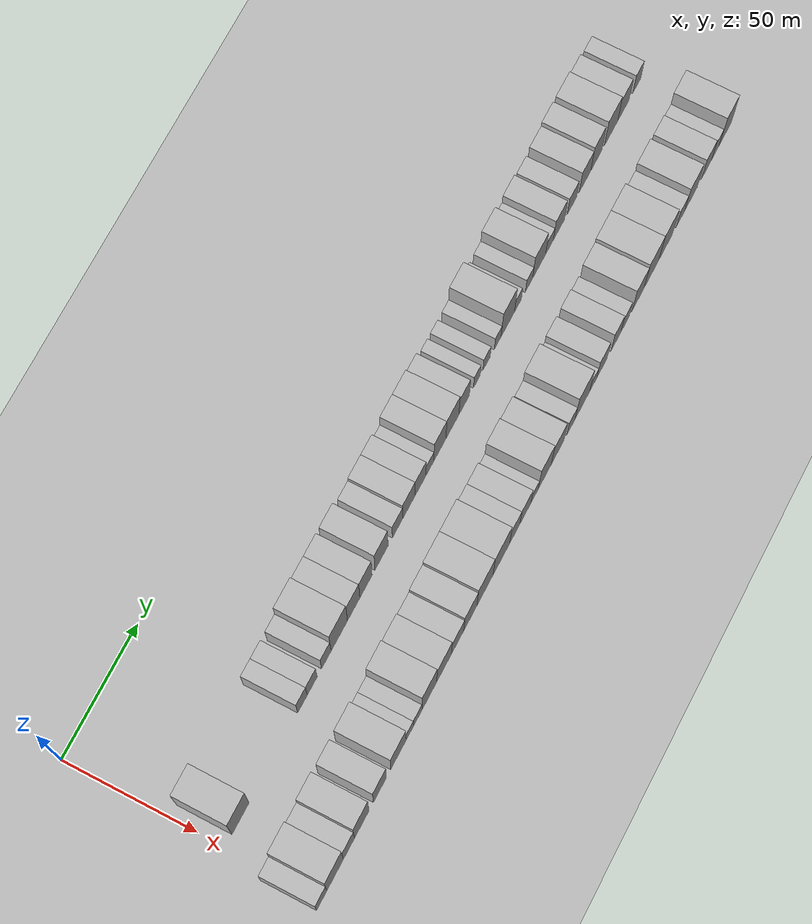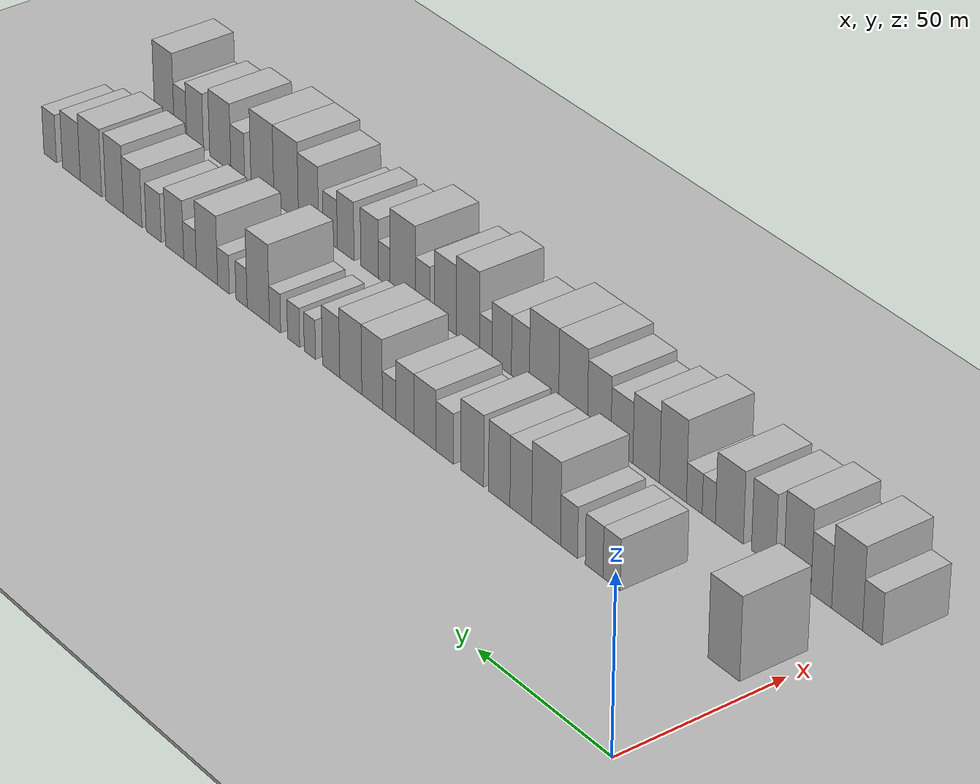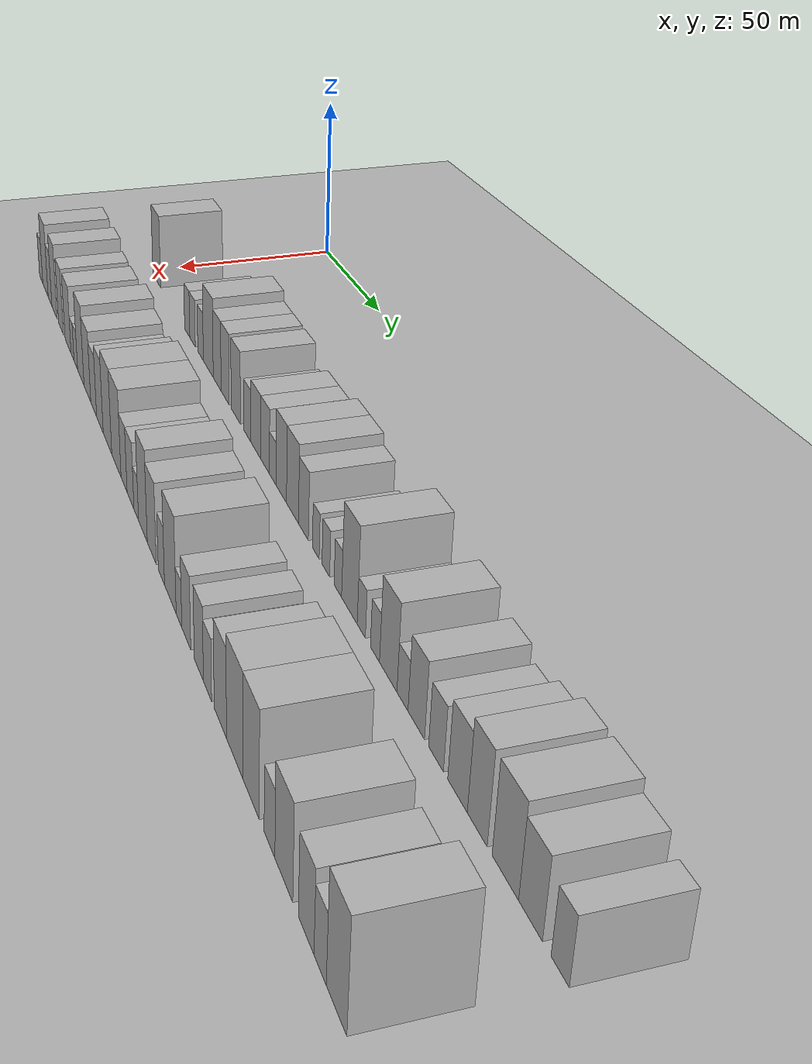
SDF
<sdf version="1.6">
 <world name="default">
  <include><name>ground_plane_1</name><uri>model://HANNAS_ground_plane</uri></include>
  <include>
   <name>ground_plane_2</name>
   <uri>model://HANNAS_ground_plane</uri>
   <pose>100 0 0  0 0 0</pose>
  </include>
  <model name="building_34">
   <static>1</static>
   <pose>50.0000 10.2601 0 0.000000 0.000000 0.000000</pose>
   <link name="link">
    <pose>0 0 12.00 0 0 0</pose>
    <collision name="collision"><geometry><box><size>20.0000 11.3468 24.0000</size></box></geometry></collision>
    <visual name="visual">
     <cast_shadows>0</cast_shadows>
     <geometry><box><size>20.0000 11.3468 24.0000</size></box></geometry>
     <material>
      <script>
       <uri>model://HANNAS_wall/materials/scripts</uri>
       <uri>model://HANNAS_wall/materials/textures</uri>
       <name>vrc/HANNAS_wall</name>
      </script>
     </material>
    </visual>
   </link>
  </model>
  <model name="building_35">
   <static>1</static>
   <pose>50.0000 51.6948 0 0.000000 0.000000 0.000000</pose>
   <link name="link">
    <pose>0 0 7.50 0 0 0</pose>
    <collision name="collision"><geometry><box><size>20.0000 6.5075 15.0000</size></box></geometry></collision>
    <visual name="visual">
     <cast_shadows>0</cast_shadows>
     <geometry><box><size>20.0000 6.5075 15.0000</size></box></geometry>
     <material>
      <script>
       <uri>model://HANNAS_wall/materials/scripts</uri>
       <uri>model://HANNAS_wall/materials/textures</uri>
       <name>vrc/HANNAS_wall</name>
      </script>
     </material>
    </visual>
   </link>
  </model>
  <model name="building_36">
   <static>1</static>
   <pose>50.0000 58.3173 0 0.000000 0.000000 0.000000</pose>
   <link name="link">
    <pose>0 0 7.50 0 0 0</pose>
    <collision name="collision"><geometry><box><size>20.0000 6.7374 15.0000</size></box></geometry></collision>
    <visual name="visual">
     <cast_shadows>0</cast_shadows>
     <geometry><box><size>20.0000 6.7374 15.0000</size></box></geometry>
     <material>
      <script>
       <uri>model://HANNAS_wall/materials/scripts</uri>
       <uri>model://HANNAS_wall/materials/textures</uri>
       <name>vrc/HANNAS_wall</name>
      </script>
     </material>
    </visual>
   </link>
  </model>
  <model name="building_37">
   <static>1</static>
   <pose>50.0000 67.9673 0 0.000000 0.000000 0.000000</pose>
   <link name="link">
    <pose>0 0 7.50 0 0 0</pose>
    <collision name="collision"><geometry><box><size>20.0000 6.5625 15.0000</size></box></geometry></collision>
    <visual name="visual">
     <cast_shadows>0</cast_shadows>
     <geometry><box><size>20.0000 6.5625 15.0000</size></box></geometry>
     <material>
      <script>
       <uri>model://HANNAS_wall/materials/scripts</uri>
       <uri>model://HANNAS_wall/materials/textures</uri>
       <name>vrc/HANNAS_wall</name>
      </script>
     </material>
    </visual>
   </link>
  </model>
  <model name="building_38">
   <static>1</static>
   <pose>50.0000 76.8623 0 0.000000 0.000000 0.000000</pose>
   <link name="link">
    <pose>0 0 12.00 0 0 0</pose>
    <collision name="collision"><geometry><box><size>20.0000 11.2276 24.0000</size></box></geometry></collision>
    <visual name="visual">
     <cast_shadows>0</cast_shadows>
     <geometry><box><size>20.0000 11.2276 24.0000</size></box></geometry>
     <material>
      <script>
       <uri>model://HANNAS_wall/materials/scripts</uri>
       <uri>model://HANNAS_wall/materials/textures</uri>
       <name>vrc/HANNAS_wall</name>
      </script>
     </material>
    </visual>
   </link>
  </model>
  <model name="building_39">
   <static>1</static>
   <pose>50.0000 86.7764 0 0.000000 0.000000 0.000000</pose>
   <link name="link">
    <pose>0 0 10.50 0 0 0</pose>
    <collision name="collision"><geometry><box><size>20.0000 8.6006 21.0000</size></box></geometry></collision>
    <visual name="visual">
     <cast_shadows>0</cast_shadows>
     <geometry><box><size>20.0000 8.6006 21.0000</size></box></geometry>
     <material>
      <script>
       <uri>model://HANNAS_wall/materials/scripts</uri>
       <uri>model://HANNAS_wall/materials/textures</uri>
       <name>vrc/HANNAS_wall</name>
      </script>
     </material>
    </visual>
   </link>
  </model>
  <model name="building_40">
   <static>1</static>
   <pose>50.0000 95.3195 0 0.000000 0.000000 0.000000</pose>
   <link name="link">
    <pose>0 0 10.50 0 0 0</pose>
    <collision name="collision"><geometry><box><size>20.0000 8.4856 21.0000</size></box></geometry></collision>
    <visual name="visual">
     <cast_shadows>0</cast_shadows>
     <geometry><box><size>20.0000 8.4856 21.0000</size></box></geometry>
     <material>
      <script>
       <uri>model://HANNAS_wall/materials/scripts</uri>
       <uri>model://HANNAS_wall/materials/textures</uri>
       <name>vrc/HANNAS_wall</name>
      </script>
     </material>
    </visual>
   </link>
  </model>
  <model name="building_41">
   <static>1</static>
   <pose>50.0000 106.1843 0 0.000000 0.000000 0.000000</pose>
   <link name="link">
    <pose>0 0 10.50 0 0 0</pose>
    <collision name="collision"><geometry><box><size>20.0000 9.2440 21.0000</size></box></geometry></collision>
    <visual name="visual">
     <cast_shadows>0</cast_shadows>
     <geometry><box><size>20.0000 9.2440 21.0000</size></box></geometry>
     <material>
      <script>
       <uri>model://HANNAS_wall/materials/scripts</uri>
       <uri>model://HANNAS_wall/materials/textures</uri>
       <name>vrc/HANNAS_wall</name>
      </script>
     </material>
    </visual>
   </link>
  </model>
  <model name="building_42">
   <static>1</static>
   <pose>50.0000 117.4076 0 0.000000 0.000000 0.000000</pose>
   <link name="link">
    <pose>0 0 7.50 0 0 0</pose>
    <collision name="collision"><geometry><box><size>20.0000 7.2025 15.0000</size></box></geometry></collision>
    <visual name="visual">
     <cast_shadows>0</cast_shadows>
     <geometry><box><size>20.0000 7.2025 15.0000</size></box></geometry>
     <material>
      <script>
       <uri>model://HANNAS_wall/materials/scripts</uri>
       <uri>model://HANNAS_wall/materials/textures</uri>
       <name>vrc/HANNAS_wall</name>
      </script>
     </material>
    </visual>
   </link>
  </model>
  <model name="building_43">
   <static>1</static>
   <pose>50.0000 125.4873 0 0.000000 0.000000 0.000000</pose>
   <link name="link">
    <pose>0 0 9.00 0 0 0</pose>
    <collision name="collision"><geometry><box><size>20.0000 8.9569 18.0000</size></box></geometry></collision>
    <visual name="visual">
     <cast_shadows>0</cast_shadows>
     <geometry><box><size>20.0000 8.9569 18.0000</size></box></geometry>
     <material>
      <script>
       <uri>model://HANNAS_wall/materials/scripts</uri>
       <uri>model://HANNAS_wall/materials/textures</uri>
       <name>vrc/HANNAS_wall</name>
      </script>
     </material>
    </visual>
   </link>
  </model>
  <model name="building_44">
   <static>1</static>
   <pose>50.0000 133.7983 0 0.000000 0.000000 0.000000</pose>
   <link name="link">
    <pose>0 0 9.00 0 0 0</pose>
    <collision name="collision"><geometry><box><size>20.0000 7.6651 18.0000</size></box></geometry></collision>
    <visual name="visual">
     <cast_shadows>0</cast_shadows>
     <geometry><box><size>20.0000 7.6651 18.0000</size></box></geometry>
     <material>
      <script>
       <uri>model://HANNAS_wall/materials/scripts</uri>
       <uri>model://HANNAS_wall/materials/textures</uri>
       <name>vrc/HANNAS_wall</name>
      </script>
     </material>
    </visual>
   </link>
  </model>
  <model name="building_45">
   <static>1</static>
   <pose>50.0000 140.4432 0 0.000000 0.000000 0.000000</pose>
   <link name="link">
    <pose>0 0 6.00 0 0 0</pose>
    <collision name="collision"><geometry><box><size>20.0000 5.6247 12.0000</size></box></geometry></collision>
    <visual name="visual">
     <cast_shadows>0</cast_shadows>
     <geometry><box><size>20.0000 5.6247 12.0000</size></box></geometry>
     <material>
      <script>
       <uri>model://HANNAS_wall/materials/scripts</uri>
       <uri>model://HANNAS_wall/materials/textures</uri>
       <name>vrc/HANNAS_wall</name>
      </script>
     </material>
    </visual>
   </link>
  </model>
  <model name="building_46">
   <static>1</static>
   <pose>50.0000 147.6350 0 0.000000 0.000000 0.000000</pose>
   <link name="link">
    <pose>0 0 10.50 0 0 0</pose>
    <collision name="collision"><geometry><box><size>20.0000 8.7589 21.0000</size></box></geometry></collision>
    <visual name="visual">
     <cast_shadows>0</cast_shadows>
     <geometry><box><size>20.0000 8.7589 21.0000</size></box></geometry>
     <material>
      <script>
       <uri>model://HANNAS_wall/materials/scripts</uri>
       <uri>model://HANNAS_wall/materials/textures</uri>
       <name>vrc/HANNAS_wall</name>
      </script>
     </material>
    </visual>
   </link>
  </model>
  <model name="building_47">
   <static>1</static>
   <pose>50.0000 156.7468 0 0.000000 0.000000 0.000000</pose>
   <link name="link">
    <pose>0 0 10.50 0 0 0</pose>
    <collision name="collision"><geometry><box><size>20.0000 9.4646 21.0000</size></box></geometry></collision>
    <visual name="visual">
     <cast_shadows>0</cast_shadows>
     <geometry><box><size>20.0000 9.4646 21.0000</size></box></geometry>
     <material>
      <script>
       <uri>model://HANNAS_wall/materials/scripts</uri>
       <uri>model://HANNAS_wall/materials/textures</uri>
       <name>vrc/HANNAS_wall</name>
      </script>
     </material>
    </visual>
   </link>
  </model>
  <model name="building_48">
   <static>1</static>
   <pose>50.0000 165.2521 0 0.000000 0.000000 0.000000</pose>
   <link name="link">
    <pose>0 0 9.00 0 0 0</pose>
    <collision name="collision"><geometry><box><size>20.0000 7.5461 18.0000</size></box></geometry></collision>
    <visual name="visual">
     <cast_shadows>0</cast_shadows>
     <geometry><box><size>20.0000 7.5461 18.0000</size></box></geometry>
     <material>
      <script>
       <uri>model://HANNAS_wall/materials/scripts</uri>
       <uri>model://HANNAS_wall/materials/textures</uri>
       <name>vrc/HANNAS_wall</name>
      </script>
     </material>
    </visual>
   </link>
  </model>
  <model name="building_49">
   <static>1</static>
   <pose>50.0000 174.4835 0 0.000000 0.000000 0.000000</pose>
   <link name="link">
    <pose>0 0 6.00 0 0 0</pose>
    <collision name="collision"><geometry><box><size>20.0000 4.9166 12.0000</size></box></geometry></collision>
    <visual name="visual">
     <cast_shadows>0</cast_shadows>
     <geometry><box><size>20.0000 4.9166 12.0000</size></box></geometry>
     <material>
      <script>
       <uri>model://HANNAS_wall/materials/scripts</uri>
       <uri>model://HANNAS_wall/materials/textures</uri>
       <name>vrc/HANNAS_wall</name>
      </script>
     </material>
    </visual>
   </link>
  </model>
  <model name="building_50">
   <static>1</static>
   <pose>50.0000 181.6245 0 0.000000 0.000000 0.000000</pose>
   <link name="link">
    <pose>0 0 6.00 0 0 0</pose>
    <collision name="collision"><geometry><box><size>20.0000 5.3654 12.0000</size></box></geometry></collision>
    <visual name="visual">
     <cast_shadows>0</cast_shadows>
     <geometry><box><size>20.0000 5.3654 12.0000</size></box></geometry>
     <material>
      <script>
       <uri>model://HANNAS_wall/materials/scripts</uri>
       <uri>model://HANNAS_wall/materials/textures</uri>
       <name>vrc/HANNAS_wall</name>
      </script>
     </material>
    </visual>
   </link>
  </model>
  <model name="building_51">
   <static>1</static>
   <pose>50.0000 189.8150 0 0.000000 0.000000 0.000000</pose>
   <link name="link">
    <pose>0 0 6.00 0 0 0</pose>
    <collision name="collision"><geometry><box><size>20.0000 5.0157 12.0000</size></box></geometry></collision>
    <visual name="visual">
     <cast_shadows>0</cast_shadows>
     <geometry><box><size>20.0000 5.0157 12.0000</size></box></geometry>
     <material>
      <script>
       <uri>model://HANNAS_wall/materials/scripts</uri>
       <uri>model://HANNAS_wall/materials/textures</uri>
       <name>vrc/HANNAS_wall</name>
      </script>
     </material>
    </visual>
   </link>
  </model>
  <model name="building_52">
   <static>1</static>
   <pose>50.0000 197.3349 0 0.000000 0.000000 0.000000</pose>
   <link name="link">
    <pose>0 0 12.00 0 0 0</pose>
    <collision name="collision"><geometry><box><size>20.0000 10.0241 24.0000</size></box></geometry></collision>
    <visual name="visual">
     <cast_shadows>0</cast_shadows>
     <geometry><box><size>20.0000 10.0241 24.0000</size></box></geometry>
     <material>
      <script>
       <uri>model://HANNAS_wall/materials/scripts</uri>
       <uri>model://HANNAS_wall/materials/textures</uri>
       <name>vrc/HANNAS_wall</name>
      </script>
     </material>
    </visual>
   </link>
  </model>
  <model name="building_53">
   <static>1</static>
   <pose>50.0000 204.8738 0 0.000000 0.000000 0.000000</pose>
   <link name="link">
    <pose>0 0 6.00 0 0 0</pose>
    <collision name="collision"><geometry><box><size>20.0000 5.0537 12.0000</size></box></geometry></collision>
    <visual name="visual">
     <cast_shadows>0</cast_shadows>
     <geometry><box><size>20.0000 5.0537 12.0000</size></box></geometry>
     <material>
      <script>
       <uri>model://HANNAS_wall/materials/scripts</uri>
       <uri>model://HANNAS_wall/materials/textures</uri>
       <name>vrc/HANNAS_wall</name>
      </script>
     </material>
    </visual>
   </link>
  </model>
  <model name="building_54">
   <static>1</static>
   <pose>50.0000 213.0801 0 0.000000 0.000000 0.000000</pose>
   <link name="link">
    <pose>0 0 6.00 0 0 0</pose>
    <collision name="collision"><geometry><box><size>20.0000 5.3588 12.0000</size></box></geometry></collision>
    <visual name="visual">
     <cast_shadows>0</cast_shadows>
     <geometry><box><size>20.0000 5.3588 12.0000</size></box></geometry>
     <material>
      <script>
       <uri>model://HANNAS_wall/materials/scripts</uri>
       <uri>model://HANNAS_wall/materials/textures</uri>
       <name>vrc/HANNAS_wall</name>
      </script>
     </material>
    </visual>
   </link>
  </model>
  <model name="building_55">
   <static>1</static>
   <pose>50.0000 220.6595 0 0.000000 0.000000 0.000000</pose>
   <link name="link">
    <pose>0 0 10.50 0 0 0</pose>
    <collision name="collision"><geometry><box><size>20.0000 9.8001 21.0000</size></box></geometry></collision>
    <visual name="visual">
     <cast_shadows>0</cast_shadows>
     <geometry><box><size>20.0000 9.8001 21.0000</size></box></geometry>
     <material>
      <script>
       <uri>model://HANNAS_wall/materials/scripts</uri>
       <uri>model://HANNAS_wall/materials/textures</uri>
       <name>vrc/HANNAS_wall</name>
      </script>
     </material>
    </visual>
   </link>
  </model>
  <model name="building_56">
   <static>1</static>
   <pose>50.0000 228.5234 0 0.000000 0.000000 0.000000</pose>
   <link name="link">
    <pose>0 0 6.00 0 0 0</pose>
    <collision name="collision"><geometry><box><size>20.0000 5.9277 12.0000</size></box></geometry></collision>
    <visual name="visual">
     <cast_shadows>0</cast_shadows>
     <geometry><box><size>20.0000 5.9277 12.0000</size></box></geometry>
     <material>
      <script>
       <uri>model://HANNAS_wall/materials/scripts</uri>
       <uri>model://HANNAS_wall/materials/textures</uri>
       <name>vrc/HANNAS_wall</name>
      </script>
     </material>
    </visual>
   </link>
  </model>
  <model name="building_57">
   <static>1</static>
   <pose>50.0000 235.7354 0 0.000000 0.000000 0.000000</pose>
   <link name="link">
    <pose>0 0 9.00 0 0 0</pose>
    <collision name="collision"><geometry><box><size>20.0000 8.4964 18.0000</size></box></geometry></collision>
    <visual name="visual">
     <cast_shadows>0</cast_shadows>
     <geometry><box><size>20.0000 8.4964 18.0000</size></box></geometry>
     <material>
      <script>
       <uri>model://HANNAS_wall/materials/scripts</uri>
       <uri>model://HANNAS_wall/materials/textures</uri>
       <name>vrc/HANNAS_wall</name>
      </script>
     </material>
    </visual>
   </link>
  </model>
  <model name="building_58">
   <static>1</static>
   <pose>50.0000 245.5716 0 0.000000 0.000000 0.000000</pose>
   <link name="link">
    <pose>0 0 7.50 0 0 0</pose>
    <collision name="collision"><geometry><box><size>20.0000 7.1761 15.0000</size></box></geometry></collision>
    <visual name="visual">
     <cast_shadows>0</cast_shadows>
     <geometry><box><size>20.0000 7.1761 15.0000</size></box></geometry>
     <material>
      <script>
       <uri>model://HANNAS_wall/materials/scripts</uri>
       <uri>model://HANNAS_wall/materials/textures</uri>
       <name>vrc/HANNAS_wall</name>
      </script>
     </material>
    </visual>
   </link>
  </model>
  <model name="building_59">
   <static>1</static>
   <pose>50.0000 255.5906 0 0.000000 0.000000 0.000000</pose>
   <link name="link">
    <pose>0 0 9.00 0 0 0</pose>
    <collision name="collision"><geometry><box><size>20.0000 8.8619 18.0000</size></box></geometry></collision>
    <visual name="visual">
     <cast_shadows>0</cast_shadows>
     <geometry><box><size>20.0000 8.8619 18.0000</size></box></geometry>
     <material>
      <script>
       <uri>model://HANNAS_wall/materials/scripts</uri>
       <uri>model://HANNAS_wall/materials/textures</uri>
       <name>vrc/HANNAS_wall</name>
      </script>
     </material>
    </visual>
   </link>
  </model>
  <model name="building_60">
   <static>1</static>
   <pose>50.0000 264.2759 0 0.000000 0.000000 0.000000</pose>
   <link name="link">
    <pose>0 0 10.50 0 0 0</pose>
    <collision name="collision"><geometry><box><size>20.0000 8.5086 21.0000</size></box></geometry></collision>
    <visual name="visual">
     <cast_shadows>0</cast_shadows>
     <geometry><box><size>20.0000 8.5086 21.0000</size></box></geometry>
     <material>
      <script>
       <uri>model://HANNAS_wall/materials/scripts</uri>
       <uri>model://HANNAS_wall/materials/textures</uri>
       <name>vrc/HANNAS_wall</name>
      </script>
     </material>
    </visual>
   </link>
  </model>
  <model name="building_61">
   <static>1</static>
   <pose>50.0000 275.7619 0 0.000000 0.000000 0.000000</pose>
   <link name="link">
    <pose>0 0 10.50 0 0 0</pose>
    <collision name="collision"><geometry><box><size>20.0000 10.4635 21.0000</size></box></geometry></collision>
    <visual name="visual">
     <cast_shadows>0</cast_shadows>
     <geometry><box><size>20.0000 10.4635 21.0000</size></box></geometry>
     <material>
      <script>
       <uri>model://HANNAS_wall/materials/scripts</uri>
       <uri>model://HANNAS_wall/materials/textures</uri>
       <name>vrc/HANNAS_wall</name>
      </script>
     </material>
    </visual>
   </link>
  </model>
  <model name="building_62">
   <static>1</static>
   <pose>50.0000 285.3940 0 0.000000 0.000000 0.000000</pose>
   <link name="link">
    <pose>0 0 9.00 0 0 0</pose>
    <collision name="collision"><geometry><box><size>20.0000 8.8008 18.0000</size></box></geometry></collision>
    <visual name="visual">
     <cast_shadows>0</cast_shadows>
     <geometry><box><size>20.0000 8.8008 18.0000</size></box></geometry>
     <material>
      <script>
       <uri>model://HANNAS_wall/materials/scripts</uri>
       <uri>model://HANNAS_wall/materials/textures</uri>
       <name>vrc/HANNAS_wall</name>
      </script>
     </material>
    </visual>
   </link>
  </model>
  <model name="building_63">
   <static>1</static>
   <pose>50.0000 295.9192 0 0.000000 0.000000 0.000000</pose>
   <link name="link">
    <pose>0 0 7.50 0 0 0</pose>
    <collision name="collision"><geometry><box><size>20.0000 6.2496 15.0000</size></box></geometry></collision>
    <visual name="visual">
     <cast_shadows>0</cast_shadows>
     <geometry><box><size>20.0000 6.2496 15.0000</size></box></geometry>
     <material>
      <script>
       <uri>model://HANNAS_wall/materials/scripts</uri>
       <uri>model://HANNAS_wall/materials/textures</uri>
       <name>vrc/HANNAS_wall</name>
      </script>
     </material>
    </visual>
   </link>
  </model>
  <model name="building_95">
   <static>1</static>
   <pose>85.0000 -0.4594 0 0.000000 0.000000 0.000000</pose>
   <link name="link">
    <pose>0 0 7.50 0 0 0</pose>
    <collision name="collision"><geometry><box><size>20.0000 6.8615 15.0000</size></box></geometry></collision>
    <visual name="visual">
     <cast_shadows>0</cast_shadows>
     <geometry><box><size>20.0000 6.8615 15.0000</size></box></geometry>
     <material>
      <script>
       <uri>model://HANNAS_wall/materials/scripts</uri>
       <uri>model://HANNAS_wall/materials/textures</uri>
       <name>vrc/HANNAS_wall</name>
      </script>
     </material>
    </visual>
   </link>
  </model>
  <model name="building_96">
   <static>1</static>
   <pose>85.0000 8.4899 0 0.000000 0.000000 0.000000</pose>
   <link name="link">
    <pose>0 0 12.00 0 0 0</pose>
    <collision name="collision"><geometry><box><size>20.0000 11.0371 24.0000</size></box></geometry></collision>
    <visual name="visual">
     <cast_shadows>0</cast_shadows>
     <geometry><box><size>20.0000 11.0371 24.0000</size></box></geometry>
     <material>
      <script>
       <uri>model://HANNAS_wall/materials/scripts</uri>
       <uri>model://HANNAS_wall/materials/textures</uri>
       <name>vrc/HANNAS_wall</name>
      </script>
     </material>
    </visual>
   </link>
  </model>
  <model name="building_97">
   <static>1</static>
   <pose>85.0000 17.7522 0 0.000000 0.000000 0.000000</pose>
   <link name="link">
    <pose>0 0 9.00 0 0 0</pose>
    <collision name="collision"><geometry><box><size>20.0000 7.4875 18.0000</size></box></geometry></collision>
    <visual name="visual">
     <cast_shadows>0</cast_shadows>
     <geometry><box><size>20.0000 7.4875 18.0000</size></box></geometry>
     <material>
      <script>
       <uri>model://HANNAS_wall/materials/scripts</uri>
       <uri>model://HANNAS_wall/materials/textures</uri>
       <name>vrc/HANNAS_wall</name>
      </script>
     </material>
    </visual>
   </link>
  </model>
  <model name="building_98">
   <static>1</static>
   <pose>85.0000 26.4121 0 0.000000 0.000000 0.000000</pose>
   <link name="link">
    <pose>0 0 12.00 0 0 0</pose>
    <collision name="collision"><geometry><box><size>20.0000 9.8324 24.0000</size></box></geometry></collision>
    <visual name="visual">
     <cast_shadows>0</cast_shadows>
     <geometry><box><size>20.0000 9.8324 24.0000</size></box></geometry>
     <material>
      <script>
       <uri>model://HANNAS_wall/materials/scripts</uri>
       <uri>model://HANNAS_wall/materials/textures</uri>
       <name>vrc/HANNAS_wall</name>
      </script>
     </material>
    </visual>
   </link>
  </model>
  <model name="building_99">
   <static>1</static>
   <pose>85.0000 38.7563 0 0.000000 0.000000 0.000000</pose>
   <link name="link">
    <pose>0 0 10.50 0 0 0</pose>
    <collision name="collision"><geometry><box><size>20.0000 8.8560 21.0000</size></box></geometry></collision>
    <visual name="visual">
     <cast_shadows>0</cast_shadows>
     <geometry><box><size>20.0000 8.8560 21.0000</size></box></geometry>
     <material>
      <script>
       <uri>model://HANNAS_wall/materials/scripts</uri>
       <uri>model://HANNAS_wall/materials/textures</uri>
       <name>vrc/HANNAS_wall</name>
      </script>
     </material>
    </visual>
   </link>
  </model>
  <model name="building_100">
   <static>1</static>
   <pose>85.0000 51.4210 0 0.000000 0.000000 0.000000</pose>
   <link name="link">
    <pose>0 0 10.50 0 0 0</pose>
    <collision name="collision"><geometry><box><size>20.0000 10.4734 21.0000</size></box></geometry></collision>
    <visual name="visual">
     <cast_shadows>0</cast_shadows>
     <geometry><box><size>20.0000 10.4734 21.0000</size></box></geometry>
     <material>
      <script>
       <uri>model://HANNAS_wall/materials/scripts</uri>
       <uri>model://HANNAS_wall/materials/textures</uri>
       <name>vrc/HANNAS_wall</name>
      </script>
     </material>
    </visual>
   </link>
  </model>
  <model name="building_101">
   <static>1</static>
   <pose>85.0000 59.1719 0 0.000000 0.000000 0.000000</pose>
   <link name="link">
    <pose>0 0 6.00 0 0 0</pose>
    <collision name="collision"><geometry><box><size>20.0000 5.0283 12.0000</size></box></geometry></collision>
    <visual name="visual">
     <cast_shadows>0</cast_shadows>
     <geometry><box><size>20.0000 5.0283 12.0000</size></box></geometry>
     <material>
      <script>
       <uri>model://HANNAS_wall/materials/scripts</uri>
       <uri>model://HANNAS_wall/materials/textures</uri>
       <name>vrc/HANNAS_wall</name>
      </script>
     </material>
    </visual>
   </link>
  </model>
  <model name="building_102">
   <static>1</static>
   <pose>85.0000 64.6702 0 0.000000 0.000000 0.000000</pose>
   <link name="link">
    <pose>0 0 6.00 0 0 0</pose>
    <collision name="collision"><geometry><box><size>20.0000 5.9684 12.0000</size></box></geometry></collision>
    <visual name="visual">
     <cast_shadows>0</cast_shadows>
     <geometry><box><size>20.0000 5.9684 12.0000</size></box></geometry>
     <material>
      <script>
       <uri>model://HANNAS_wall/materials/scripts</uri>
       <uri>model://HANNAS_wall/materials/textures</uri>
       <name>vrc/HANNAS_wall</name>
      </script>
     </material>
    </visual>
   </link>
  </model>
  <model name="building_103">
   <static>1</static>
   <pose>85.0000 72.8113 0 0.000000 0.000000 0.000000</pose>
   <link name="link">
    <pose>0 0 12.00 0 0 0</pose>
    <collision name="collision"><geometry><box><size>20.0000 10.3137 24.0000</size></box></geometry></collision>
    <visual name="visual">
     <cast_shadows>0</cast_shadows>
     <geometry><box><size>20.0000 10.3137 24.0000</size></box></geometry>
     <material>
      <script>
       <uri>model://HANNAS_wall/materials/scripts</uri>
       <uri>model://HANNAS_wall/materials/textures</uri>
       <name>vrc/HANNAS_wall</name>
      </script>
     </material>
    </visual>
   </link>
  </model>
  <model name="building_104">
   <static>1</static>
   <pose>85.0000 83.1568 0 0.000000 0.000000 0.000000</pose>
   <link name="link">
    <pose>0 0 10.50 0 0 0</pose>
    <collision name="collision"><geometry><box><size>20.0000 10.3774 21.0000</size></box></geometry></collision>
    <visual name="visual">
     <cast_shadows>0</cast_shadows>
     <geometry><box><size>20.0000 10.3774 21.0000</size></box></geometry>
     <material>
      <script>
       <uri>model://HANNAS_wall/materials/scripts</uri>
       <uri>model://HANNAS_wall/materials/textures</uri>
       <name>vrc/HANNAS_wall</name>
      </script>
     </material>
    </visual>
   </link>
  </model>
  <model name="building_105">
   <static>1</static>
   <pose>85.0000 92.6699 0 0.000000 0.000000 0.000000</pose>
   <link name="link">
    <pose>0 0 9.00 0 0 0</pose>
    <collision name="collision"><geometry><box><size>20.0000 8.6486 18.0000</size></box></geometry></collision>
    <visual name="visual">
     <cast_shadows>0</cast_shadows>
     <geometry><box><size>20.0000 8.6486 18.0000</size></box></geometry>
     <material>
      <script>
       <uri>model://HANNAS_wall/materials/scripts</uri>
       <uri>model://HANNAS_wall/materials/textures</uri>
       <name>vrc/HANNAS_wall</name>
      </script>
     </material>
    </visual>
   </link>
  </model>
  <model name="building_106">
   <static>1</static>
   <pose>85.0000 101.6685 0 0.000000 0.000000 0.000000</pose>
   <link name="link">
    <pose>0 0 10.50 0 0 0</pose>
    <collision name="collision"><geometry><box><size>20.0000 9.3486 21.0000</size></box></geometry></collision>
    <visual name="visual">
     <cast_shadows>0</cast_shadows>
     <geometry><box><size>20.0000 9.3486 21.0000</size></box></geometry>
     <material>
      <script>
       <uri>model://HANNAS_wall/materials/scripts</uri>
       <uri>model://HANNAS_wall/materials/textures</uri>
       <name>vrc/HANNAS_wall</name>
      </script>
     </material>
    </visual>
   </link>
  </model>
  <model name="building_107">
   <static>1</static>
   <pose>85.0000 112.1136 0 0.000000 0.000000 0.000000</pose>
   <link name="link">
    <pose>0 0 12.00 0 0 0</pose>
    <collision name="collision"><geometry><box><size>20.0000 11.5416 24.0000</size></box></geometry></collision>
    <visual name="visual">
     <cast_shadows>0</cast_shadows>
     <geometry><box><size>20.0000 11.5416 24.0000</size></box></geometry>
     <material>
      <script>
       <uri>model://HANNAS_wall/materials/scripts</uri>
       <uri>model://HANNAS_wall/materials/textures</uri>
       <name>vrc/HANNAS_wall</name>
      </script>
     </material>
    </visual>
   </link>
  </model>
  <model name="building_108">
   <static>1</static>
   <pose>85.0000 123.8364 0 0.000000 0.000000 0.000000</pose>
   <link name="link">
    <pose>0 0 12.00 0 0 0</pose>
    <collision name="collision"><geometry><box><size>20.0000 11.9042 24.0000</size></box></geometry></collision>
    <visual name="visual">
     <cast_shadows>0</cast_shadows>
     <geometry><box><size>20.0000 11.9042 24.0000</size></box></geometry>
     <material>
      <script>
       <uri>model://HANNAS_wall/materials/scripts</uri>
       <uri>model://HANNAS_wall/materials/textures</uri>
       <name>vrc/HANNAS_wall</name>
      </script>
     </material>
    </visual>
   </link>
  </model>
  <model name="building_109">
   <static>1</static>
   <pose>85.0000 133.5028 0 0.000000 0.000000 0.000000</pose>
   <link name="link">
    <pose>0 0 9.00 0 0 0</pose>
    <collision name="collision"><geometry><box><size>20.0000 7.4286 18.0000</size></box></geometry></collision>
    <visual name="visual">
     <cast_shadows>0</cast_shadows>
     <geometry><box><size>20.0000 7.4286 18.0000</size></box></geometry>
     <material>
      <script>
       <uri>model://HANNAS_wall/materials/scripts</uri>
       <uri>model://HANNAS_wall/materials/textures</uri>
       <name>vrc/HANNAS_wall</name>
      </script>
     </material>
    </visual>
   </link>
  </model>
  <model name="building_110">
   <static>1</static>
   <pose>85.0000 141.2300 0 0.000000 0.000000 0.000000</pose>
   <link name="link">
    <pose>0 0 9.00 0 0 0</pose>
    <collision name="collision"><geometry><box><size>20.0000 8.0257 18.0000</size></box></geometry></collision>
    <visual name="visual">
     <cast_shadows>0</cast_shadows>
     <geometry><box><size>20.0000 8.0257 18.0000</size></box></geometry>
     <material>
      <script>
       <uri>model://HANNAS_wall/materials/scripts</uri>
       <uri>model://HANNAS_wall/materials/textures</uri>
       <name>vrc/HANNAS_wall</name>
      </script>
     </material>
    </visual>
   </link>
  </model>
  <model name="building_111">
   <static>1</static>
   <pose>85.0000 147.8836 0 0.000000 0.000000 0.000000</pose>
   <link name="link">
    <pose>0 0 6.00 0 0 0</pose>
    <collision name="collision"><geometry><box><size>20.0000 5.2816 12.0000</size></box></geometry></collision>
    <visual name="visual">
     <cast_shadows>0</cast_shadows>
     <geometry><box><size>20.0000 5.2816 12.0000</size></box></geometry>
     <material>
      <script>
       <uri>model://HANNAS_wall/materials/scripts</uri>
       <uri>model://HANNAS_wall/materials/textures</uri>
       <name>vrc/HANNAS_wall</name>
      </script>
     </material>
    </visual>
   </link>
  </model>
  <model name="building_112">
   <static>1</static>
   <pose>85.0000 155.3480 0 0.000000 0.000000 0.000000</pose>
   <link name="link">
    <pose>0 0 12.00 0 0 0</pose>
    <collision name="collision"><geometry><box><size>20.0000 9.6471 24.0000</size></box></geometry></collision>
    <visual name="visual">
     <cast_shadows>0</cast_shadows>
     <geometry><box><size>20.0000 9.6471 24.0000</size></box></geometry>
     <material>
      <script>
       <uri>model://HANNAS_wall/materials/scripts</uri>
       <uri>model://HANNAS_wall/materials/textures</uri>
       <name>vrc/HANNAS_wall</name>
      </script>
     </material>
    </visual>
   </link>
  </model>
  <model name="building_113">
   <static>1</static>
   <pose>85.0000 164.8830 0 0.000000 0.000000 0.000000</pose>
   <link name="link">
    <pose>0 0 10.50 0 0 0</pose>
    <collision name="collision"><geometry><box><size>20.0000 9.4230 21.0000</size></box></geometry></collision>
    <visual name="visual">
     <cast_shadows>0</cast_shadows>
     <geometry><box><size>20.0000 9.4230 21.0000</size></box></geometry>
     <material>
      <script>
       <uri>model://HANNAS_wall/materials/scripts</uri>
       <uri>model://HANNAS_wall/materials/textures</uri>
       <name>vrc/HANNAS_wall</name>
      </script>
     </material>
    </visual>
   </link>
  </model>
  <model name="building_114">
   <static>1</static>
   <pose>85.0000 174.6997 0 0.000000 0.000000 0.000000</pose>
   <link name="link">
    <pose>0 0 7.50 0 0 0</pose>
    <collision name="collision"><geometry><box><size>20.0000 6.2103 15.0000</size></box></geometry></collision>
    <visual name="visual">
     <cast_shadows>0</cast_shadows>
     <geometry><box><size>20.0000 6.2103 15.0000</size></box></geometry>
     <material>
      <script>
       <uri>model://HANNAS_wall/materials/scripts</uri>
       <uri>model://HANNAS_wall/materials/textures</uri>
       <name>vrc/HANNAS_wall</name>
      </script>
     </material>
    </visual>
   </link>
  </model>
  <model name="building_115">
   <static>1</static>
   <pose>85.0000 183.3237 0 0.000000 0.000000 0.000000</pose>
   <link name="link">
    <pose>0 0 12.00 0 0 0</pose>
    <collision name="collision"><geometry><box><size>20.0000 11.0376 24.0000</size></box></geometry></collision>
    <visual name="visual">
     <cast_shadows>0</cast_shadows>
     <geometry><box><size>20.0000 11.0376 24.0000</size></box></geometry>
     <material>
      <script>
       <uri>model://HANNAS_wall/materials/scripts</uri>
       <uri>model://HANNAS_wall/materials/textures</uri>
       <name>vrc/HANNAS_wall</name>
      </script>
     </material>
    </visual>
   </link>
  </model>
  <model name="building_116">
   <static>1</static>
   <pose>85.0000 191.4164 0 0.000000 0.000000 0.000000</pose>
   <link name="link">
    <pose>0 0 6.00 0 0 0</pose>
    <collision name="collision"><geometry><box><size>20.0000 5.1479 12.0000</size></box></geometry></collision>
    <visual name="visual">
     <cast_shadows>0</cast_shadows>
     <geometry><box><size>20.0000 5.1479 12.0000</size></box></geometry>
     <material>
      <script>
       <uri>model://HANNAS_wall/materials/scripts</uri>
       <uri>model://HANNAS_wall/materials/textures</uri>
       <name>vrc/HANNAS_wall</name>
      </script>
     </material>
    </visual>
   </link>
  </model>
  <model name="building_117">
   <static>1</static>
   <pose>85.0000 197.9180 0 0.000000 0.000000 0.000000</pose>
   <link name="link">
    <pose>0 0 9.00 0 0 0</pose>
    <collision name="collision"><geometry><box><size>20.0000 7.8554 18.0000</size></box></geometry></collision>
    <visual name="visual">
     <cast_shadows>0</cast_shadows>
     <geometry><box><size>20.0000 7.8554 18.0000</size></box></geometry>
     <material>
      <script>
       <uri>model://HANNAS_wall/materials/scripts</uri>
       <uri>model://HANNAS_wall/materials/textures</uri>
       <name>vrc/HANNAS_wall</name>
      </script>
     </material>
    </visual>
   </link>
  </model>
  <model name="building_118">
   <static>1</static>
   <pose>85.0000 208.5923 0 0.000000 0.000000 0.000000</pose>
   <link name="link">
    <pose>0 0 9.00 0 0 0</pose>
    <collision name="collision"><geometry><box><size>20.0000 7.4932 18.0000</size></box></geometry></collision>
    <visual name="visual">
     <cast_shadows>0</cast_shadows>
     <geometry><box><size>20.0000 7.4932 18.0000</size></box></geometry>
     <material>
      <script>
       <uri>model://HANNAS_wall/materials/scripts</uri>
       <uri>model://HANNAS_wall/materials/textures</uri>
       <name>vrc/HANNAS_wall</name>
      </script>
     </material>
    </visual>
   </link>
  </model>
  <model name="building_119">
   <static>1</static>
   <pose>85.0000 215.5584 0 0.000000 0.000000 0.000000</pose>
   <link name="link">
    <pose>0 0 7.50 0 0 0</pose>
    <collision name="collision"><geometry><box><size>20.0000 6.4390 15.0000</size></box></geometry></collision>
    <visual name="visual">
     <cast_shadows>0</cast_shadows>
     <geometry><box><size>20.0000 6.4390 15.0000</size></box></geometry>
     <material>
      <script>
       <uri>model://HANNAS_wall/materials/scripts</uri>
       <uri>model://HANNAS_wall/materials/textures</uri>
       <name>vrc/HANNAS_wall</name>
      </script>
     </material>
    </visual>
   </link>
  </model>
  <model name="building_120">
   <static>1</static>
   <pose>85.0000 225.3874 0 0.000000 0.000000 0.000000</pose>
   <link name="link">
    <pose>0 0 10.50 0 0 0</pose>
    <collision name="collision"><geometry><box><size>20.0000 9.2189 21.0000</size></box></geometry></collision>
    <visual name="visual">
     <cast_shadows>0</cast_shadows>
     <geometry><box><size>20.0000 9.2189 21.0000</size></box></geometry>
     <material>
      <script>
       <uri>model://HANNAS_wall/materials/scripts</uri>
       <uri>model://HANNAS_wall/materials/textures</uri>
       <name>vrc/HANNAS_wall</name>
      </script>
     </material>
    </visual>
   </link>
  </model>
  <model name="building_121">
   <static>1</static>
   <pose>85.0000 235.6620 0 0.000000 0.000000 0.000000</pose>
   <link name="link">
    <pose>0 0 12.00 0 0 0</pose>
    <collision name="collision"><geometry><box><size>20.0000 11.3304 24.0000</size></box></geometry></collision>
    <visual name="visual">
     <cast_shadows>0</cast_shadows>
     <geometry><box><size>20.0000 11.3304 24.0000</size></box></geometry>
     <material>
      <script>
       <uri>model://HANNAS_wall/materials/scripts</uri>
       <uri>model://HANNAS_wall/materials/textures</uri>
       <name>vrc/HANNAS_wall</name>
      </script>
     </material>
    </visual>
   </link>
  </model>
  <model name="building_122">
   <static>1</static>
   <pose>85.0000 246.6775 0 0.000000 0.000000 0.000000</pose>
   <link name="link">
    <pose>0 0 12.00 0 0 0</pose>
    <collision name="collision"><geometry><box><size>20.0000 10.7006 24.0000</size></box></geometry></collision>
    <visual name="visual">
     <cast_shadows>0</cast_shadows>
     <geometry><box><size>20.0000 10.7006 24.0000</size></box></geometry>
     <material>
      <script>
       <uri>model://HANNAS_wall/materials/scripts</uri>
       <uri>model://HANNAS_wall/materials/textures</uri>
       <name>vrc/HANNAS_wall</name>
      </script>
     </material>
    </visual>
   </link>
  </model>
  <model name="building_123">
   <static>1</static>
   <pose>85.0000 258.2732 0 0.000000 0.000000 0.000000</pose>
   <link name="link">
    <pose>0 0 7.50 0 0 0</pose>
    <collision name="collision"><geometry><box><size>20.0000 6.4908 15.0000</size></box></geometry></collision>
    <visual name="visual">
     <cast_shadows>0</cast_shadows>
     <geometry><box><size>20.0000 6.4908 15.0000</size></box></geometry>
     <material>
      <script>
       <uri>model://HANNAS_wall/materials/scripts</uri>
       <uri>model://HANNAS_wall/materials/textures</uri>
       <name>vrc/HANNAS_wall</name>
      </script>
     </material>
    </visual>
   </link>
  </model>
  <model name="building_124">
   <static>1</static>
   <pose>85.0000 266.5960 0 0.000000 0.000000 0.000000</pose>
   <link name="link">
    <pose>0 0 10.50 0 0 0</pose>
    <collision name="collision"><geometry><box><size>20.0000 10.1548 21.0000</size></box></geometry></collision>
    <visual name="visual">
     <cast_shadows>0</cast_shadows>
     <geometry><box><size>20.0000 10.1548 21.0000</size></box></geometry>
     <material>
      <script>
       <uri>model://HANNAS_wall/materials/scripts</uri>
       <uri>model://HANNAS_wall/materials/textures</uri>
       <name>vrc/HANNAS_wall</name>
      </script>
     </material>
    </visual>
   </link>
  </model>
  <model name="building_125">
   <static>1</static>
   <pose>85.0000 278.7322 0 0.000000 0.000000 0.000000</pose>
   <link name="link">
    <pose>0 0 9.00 0 0 0</pose>
    <collision name="collision"><geometry><box><size>20.0000 8.1175 18.0000</size></box></geometry></collision>
    <visual name="visual">
     <cast_shadows>0</cast_shadows>
     <geometry><box><size>20.0000 8.1175 18.0000</size></box></geometry>
     <material>
      <script>
       <uri>model://HANNAS_wall/materials/scripts</uri>
       <uri>model://HANNAS_wall/materials/textures</uri>
       <name>vrc/HANNAS_wall</name>
      </script>
     </material>
    </visual>
   </link>
  </model>
  <model name="building_126">
   <static>1</static>
   <pose>85.0000 285.8206 0 0.000000 0.000000 0.000000</pose>
   <link name="link">
    <pose>0 0 7.50 0 0 0</pose>
    <collision name="collision"><geometry><box><size>20.0000 6.0594 15.0000</size></box></geometry></collision>
    <visual name="visual">
     <cast_shadows>0</cast_shadows>
     <geometry><box><size>20.0000 6.0594 15.0000</size></box></geometry>
     <material>
      <script>
       <uri>model://HANNAS_wall/materials/scripts</uri>
       <uri>model://HANNAS_wall/materials/textures</uri>
       <name>vrc/HANNAS_wall</name>
      </script>
     </material>
    </visual>
   </link>
  </model>
  <model name="building_127">
   <static>1</static>
   <pose>85.0000 293.6552 0 0.000000 0.000000 0.000000</pose>
   <link name="link">
    <pose>0 0 12.00 0 0 0</pose>
    <collision name="collision"><geometry><box><size>20.0000 9.6098 24.0000</size></box></geometry></collision>
    <visual name="visual">
     <cast_shadows>0</cast_shadows>
     <geometry><box><size>20.0000 9.6098 24.0000</size></box></geometry>
     <material>
      <script>
       <uri>model://HANNAS_wall/materials/scripts</uri>
       <uri>model://HANNAS_wall/materials/textures</uri>
       <name>vrc/HANNAS_wall</name>
      </script>
     </material>
    </visual>
   </link>
  </model>
 </world>
</sdf>
